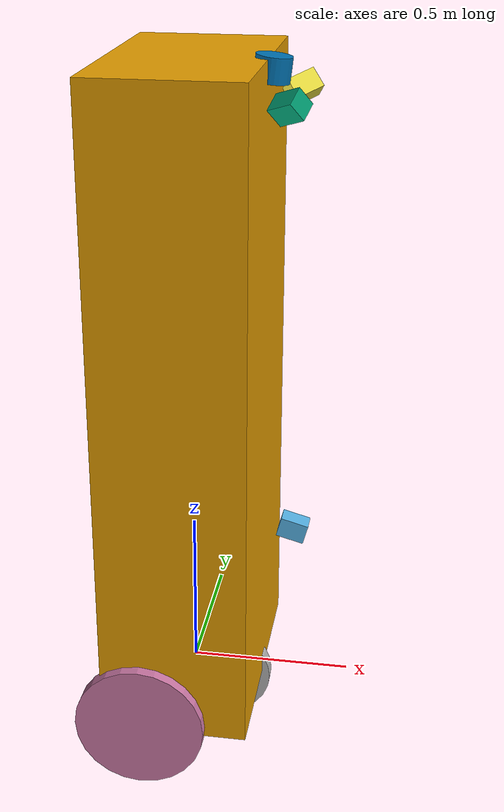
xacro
<?xml version="1.0"?>
<robot xmlns:xacro="http://wwww.ros.org/wiki/xacro" name="navvis">
    <link name="base">
        <visual>
            <origin xyz="0.0 0.0 0.96" rpy="0.0 0.0 0.0"/>
            <geometry>
                <box size="0.45 0.78 1.98"/>
            </geometry>
        </visual>
        <collision>
            <origin xyz="0.0 0.0 0.96" rpy="0.0 0.0 0.0"/>
            <geometry>
                <box size="0.45 0.78 1.98"/>
            </geometry>
        </collision>
    </link>

    <link name="laser_vert_bottom">
        <visual>
            <origin xyz="0.3158 -0.0021 0.5100" rpy="3.1355 -1.3045 0.0025"/>
            <geometry>
                <box size="0.062 0.062 0.087"/>
            </geometry>
        </visual>
        <collision>
            <origin xyz="0.3158 -0.0021 -0.5100" rpy="3.1355 -1.3045 0.0025"/>
            <geometry>
                <box size="0.062 0.062 0.087"/>
            </geometry>
        </collision>
    </link>

    <joint name="base_laser_vert_bottom_joint" type="fixed">
        <parent link="base"/>
        <child link="laser_vert_bottom"/>
        <origin xyz="0 0 0"/>
    </joint>

    <link name="laser_vert_top_right">
        <visual>
           <origin xyz="0.2978 -0.1450 1.8451" rpy="-1.1760 0.6313 -1.9377"/>
           <geometry>
               <box size="0.062 0.062 0.087"/>
           </geometry>
        </visual>
        <collision>
            <origin xyz="0.2978 -0.1450 1.8451" rpy="-1.1760 0.6313 -1.9377"/>
            <geometry>
                <box size="0.062 0.062 0.087"/>
            </geometry>
        </collision>
    </link>

    <joint name="base_laser_vert_top_right_joint" type="fixed">
        <parent link="base"/>
        <child link="laser_vert_top_right"/>
        <origin xyz="0 0 0"/>
    </joint>

    <link name="laser_vert_top_left">
    <visual>
       <origin xyz="0.2997 0.1531 1.8443" rpy="1.1780 0.6198 1.9560"/>
       <geometry>
            <box size="0.062 0.062 0.087"/>
        </geometry>
    </visual>
    <collision>

       <origin xyz="0.2997 0.1531 1.8443" rpy="1.1780 0.6198 1.9560"/>
       <geometry>
            <box size="0.062 0.062 0.087"/>
        </geometry>
    </collision>
    </link>

    <joint name="base_laser_vert_top_left_joint" type="fixed">
        <parent link="base"/>
        <child link="laser_vert_top_left"/>
        <origin xyz="0 0 0"/>
    </joint>

    <link name="laser_horiz">
        <visual>
            <origin xyz="0.2325 0.0001 1.9201" rpy="-0.0012 0.1146 -0.0015"/>
            <geometry>
               <cylinder radius="0.052" length="0.072"/>
            </geometry>
        </visual>
       <collision>

            <origin xyz="0.2325 0.0001 1.9201" rpy="-0.0012 0.1146 -0.0015"/>
            <geometry>
               <cylinder radius="0.052" length="0.072"/>
            </geometry>
       </collision>
    </link>

    <joint name="base_laser_horiz_joint" type="fixed">
        <parent link="base"/>
        <child link="laser_horiz"/>
        <origin xyz="0 0 0"/>
    </joint>

<xacro:macro name="wheel_maker" params="side reflect">

    <link name="wheel_${side}">
        <visual>
           <geometry>
               <cylinder radius="0.2" length="0.05"/>
           </geometry>
        </visual>
        <collision>
           <geometry>
               <cylinder radius="0.2" length="0.05"/>
           </geometry>
        </collision>
    </link>

    <joint name="base_wheel_${side}_joint" type="continuous">
        <parent link="base"/>
        <child link="wheel_${side}"/>
        <origin xyz="-0.10 ${reflect*0.4} 0.0" rpy="${-pi/2} 0.0 0.0"/>
        <limit effort="1000.0" velocity="0.5"/>
        <axis xyz="0.0 0.0 1.0"/>
    </joint>
</xacro:macro>

<xacro:wheel_maker side="left" reflect="1"/>
<xacro:wheel_maker side="right" reflect="-1"/>

<xacro:macro name="center_wheel_maker" params="side reflect">

    <link name="wheel_${side}">
        <visual>
           <geometry>
               <cylinder radius="0.15" length="0.05"/>
           </geometry>
        </visual>
        <collision>
           <geometry>
               <cylinder radius="0.15" length="0.05"/>
           </geometry>
        </collision>
    </link>

    <joint name="base_wheel_${side}_joint" type="continuous">
        <parent link="base"/>
        <child link="wheel_${side}"/>
        <origin xyz="0.10 ${reflect*0.0} -0.05" rpy="${-pi/2} 0.0 0.0"/>
        <limit effort="1.0" velocity="1.0"/>
        <axis xyz="0.0 0.0 1.0"/>
    </joint>

</xacro:macro>

<xacro:center_wheel_maker side="center" reflect="1"/>

</robot>
